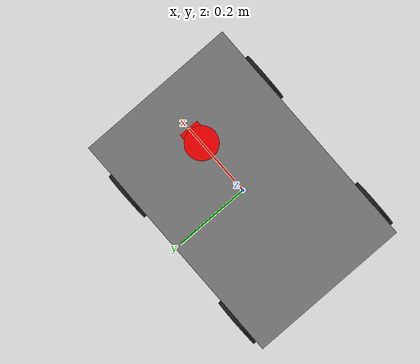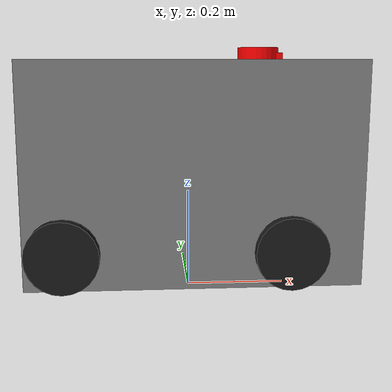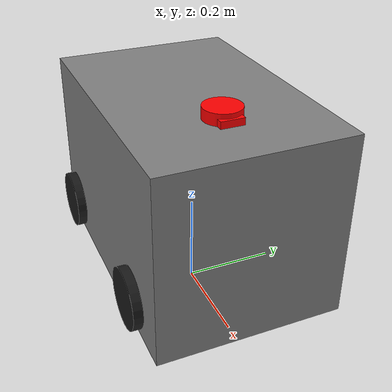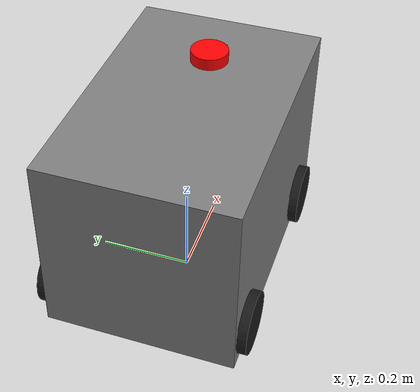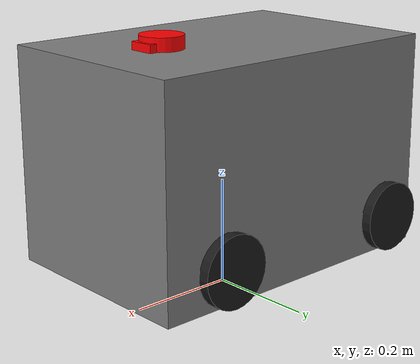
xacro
<?xml version="1.0"?>
<robot name="tianbot_ackermann" xmlns:xacro="http://www.ros.org/wiki/xacro">

  <!-- 实际尺寸参数（根据实测调整） -->
  <xacro:property name="chassis_length" value="0.60"/>
  <xacro:property name="chassis_width" value="0.40"/>
  <xacro:property name="chassis_height" value="0.40"/>

  <xacro:property name="wheel_radius" value="0.065"/>
  <xacro:property name="wheel_width" value="0.04"/>
  <xacro:property name="wheel_mass" value="3.0"/>
  <xacro:property name="steering_mass" value="0.01"/>

  <!-- 轮子位置：前轮距前端13cm，后轮距后端7cm（实测值） -->
  <!-- 轴距 = 0.60 - 0.13 - 0.07 = 0.40m -->
  <xacro:property name="front_wheel_x" value="${chassis_length/2 - 0.13}"/>
  <xacro:property name="rear_wheel_x" value="${-chassis_length/2 + 0.07}"/>
  <xacro:property name="wheel_y" value="${chassis_width/2}"/>

  <xacro:property name="wheelbase" value="${front_wheel_x - rear_wheel_x}"/>
  <xacro:property name="track_width" value="${chassis_width}"/>

  <xacro:property name="M_PI" value="3.1415926535897931"/>

  <!-- Base Footprint -->
  <link name="base_footprint"/>

  <!-- Base Link -->
  <link name="base_link"/>

  <joint name="base_footprint_joint" type="fixed">
    <parent link="base_footprint"/>
    <child link="base_link"/>
    <origin xyz="0 0 ${wheel_radius}" rpy="0 0 0"/>
  </joint>

  <!-- Chassis Link -->
  <link name="chassis_link">
    <visual>
      <origin xyz="0 0 ${chassis_height/2}" rpy="0 0 0"/>
      <geometry>
        <box size="${chassis_length} ${chassis_width} ${chassis_height}"/>
      </geometry>
      <material name="gray">
        <color rgba="0.5 0.5 0.5 1.0"/>
      </material>
    </visual>
    <collision>
      <origin xyz="0 0 ${chassis_height/2}" rpy="0 0 0"/>
      <geometry>
        <box size="${chassis_length} ${chassis_width} ${chassis_height}"/>
      </geometry>
    </collision>
    <inertial>
      <origin xyz="0 0 ${chassis_height/2}" rpy="0 0 0"/>
      <mass value="15.0"/>
      <inertia ixx="0.5" ixy="0.0" ixz="0.0" iyy="0.8" iyz="0.0" izz="0.5"/>
    </inertial>
  </link>

  <joint name="chassis_joint" type="fixed">
    <parent link="base_link"/>
    <child link="chassis_link"/>
    <origin xyz="0 0 0" rpy="0 0 0"/>
  </joint>

  <!-- 前轮转向宏 -->
  <xacro:macro name="front_wheel" params="prefix reflect">
    <joint name="${prefix}_steer_joint" type="revolute">
      <parent link="chassis_link"/>
      <child link="${prefix}_steer_link"/>
      <origin xyz="${front_wheel_x} ${reflect*wheel_y} ${wheel_radius}" rpy="0 0 0"/>
      <axis xyz="0 0 1"/>
      <limit lower="-0.6" upper="0.6" effort="100" velocity="-1.0"/>
    </joint>

    <link name="${prefix}_steer_link">
      <inertial>
        <mass value="${steering_mass}"/>
        <origin xyz="0 0 0" rpy="0 0 0"/>
        <inertia ixx="${steering_mass/12*(3*wheel_radius*wheel_radius + wheel_width*wheel_width)}"
                 ixy="0" ixz="0"
                 iyy="${steering_mass/12*(3*wheel_radius*wheel_radius + wheel_width*wheel_width)}"
                 iyz="0"
                 izz="${steering_mass/2 * wheel_radius*wheel_radius}"/>
      </inertial>
    </link>

    <joint name="${prefix}_wheel_joint" type="continuous">
      <parent link="${prefix}_steer_link"/>
      <child link="${prefix}_wheel"/>
      <origin xyz="0 0 0" rpy="0 0 0"/>
      <axis xyz="0 1 0"/>
      <dynamics damping="0.5" friction="0.8"/>
      <limit lower="-3.14159" upper="3.14159" effort="200" velocity="-1"/>
    </joint>

    <link name="${prefix}_wheel">
      <visual>
        <origin xyz="0 0 0" rpy="${M_PI/2} 0 0"/>
        <geometry>
          <cylinder radius="${wheel_radius}" length="${wheel_width}"/>
        </geometry>
        <material name="black">
          <color rgba="0.1 0.1 0.1 1.0"/>
        </material>
      </visual>
      <collision>
        <origin xyz="0 0 0" rpy="${M_PI/2} 0 0"/>
        <geometry>
          <cylinder radius="${wheel_radius}" length="${wheel_width}"/>
        </geometry>
      </collision>
      <inertial>
        <mass value="${wheel_mass}"/>
        <origin xyz="0 0 0" rpy="0 0 0"/>
        <inertia ixx="${wheel_mass/12*(3*wheel_radius*wheel_radius + wheel_width*wheel_width)}"
                 ixy="0" ixz="0"
                 iyy="${wheel_mass/12*(3*wheel_radius*wheel_radius + wheel_width*wheel_width)}"
                 iyz="0"
                 izz="${wheel_mass/2 * wheel_radius*wheel_radius}"/>
      </inertial>
    </link>
  </xacro:macro>

  <!-- 后轮宏 -->
  <xacro:macro name="rear_wheel" params="prefix reflect">
    <joint name="${prefix}_wheel_joint" type="continuous">
      <parent link="chassis_link"/>
      <child link="${prefix}_wheel"/>
      <origin xyz="${rear_wheel_x} ${reflect*wheel_y} ${wheel_radius}" rpy="0 0 0"/>
      <axis xyz="0 1 0"/>
      <dynamics damping="0.5" friction="0.8"/>
      <limit lower="-3.14159" upper="3.14159" effort="70" velocity="-1"/>
    </joint>

    <link name="${prefix}_wheel">
      <visual>
        <origin xyz="0 0 0" rpy="${M_PI/2} 0 0"/>
        <geometry>
          <cylinder radius="${wheel_radius}" length="${wheel_width}"/>
        </geometry>
        <material name="black">
          <color rgba="0.1 0.1 0.1 1.0"/>
        </material>
      </visual>
      <collision>
        <origin xyz="0 0 0" rpy="${M_PI/2} 0 0"/>
        <geometry>
          <cylinder radius="${wheel_radius}" length="${wheel_width}"/>
        </geometry>
      </collision>
      <inertial>
        <mass value="${wheel_mass}"/>
        <origin xyz="0 0 0" rpy="0 0 0"/>
        <inertia ixx="${wheel_mass/12*(3*wheel_radius*wheel_radius + wheel_width*wheel_width)}"
                 ixy="0" ixz="0"
                 iyy="${wheel_mass/12*(3*wheel_radius*wheel_radius + wheel_width*wheel_width)}"
                 iyz="0"
                 izz="${wheel_mass/2 * wheel_radius*wheel_radius}"/>
      </inertial>
    </link>
  </xacro:macro>

  <!-- 实例化轮子 -->
  <xacro:front_wheel prefix="fr_left" reflect="1"/>
  <xacro:front_wheel prefix="fr_right" reflect="-1"/>
  <xacro:rear_wheel prefix="re_left" reflect="1"/>
  <xacro:rear_wheel prefix="re_right" reflect="-1"/>

  <!-- Gazebo材质与摩擦配置 -->
  <gazebo reference="chassis_link">
    <material>Gazebo/White</material>
    <mu1>0.5</mu1>
    <mu2>0.5</mu2>
  </gazebo>

  <gazebo reference="fr_left_wheel">
    <material>Gazebo/Grey</material>
    <mu1>150.0</mu1>
    <mu2>10.0</mu2>
  </gazebo>

  <gazebo reference="fr_right_wheel">
    <material>Gazebo/Grey</material>
    <mu1>150.0</mu1>
    <mu2>10.0</mu2>
  </gazebo>

  <gazebo reference="re_left_wheel">
    <material>Gazebo/Grey</material>
    <mu1>150.0</mu1>
    <mu2>10.0</mu2>
  </gazebo>

  <gazebo reference="re_right_wheel">
    <material>Gazebo/Grey</material>
    <mu1>150.0</mu1>
    <mu2>10.0</mu2>
  </gazebo>

  <gazebo reference="virtual_steer_link">
    <material>Gazebo/Yellow</material>
  </gazebo>

  <!-- 摄像头：前轮水平位置，宽度一半处 -->
  <joint name="camera_joint" type="fixed">
    <parent link="chassis_link"/>
    <child link="camera_link"/>
    <origin xyz="${front_wheel_x} 0 ${chassis_height}" rpy="0 0 0"/>
  </joint>

  <link name="camera_link">
    <visual>
      <geometry>
        <box size="0.03 0.05 0.03"/>
      </geometry>
      <material name="red">
        <color rgba="1.0 0.0 0.0 1.0"/>
      </material>
    </visual>
    <collision>
      <geometry>
        <box size="0.03 0.05 0.03"/>
      </geometry>
    </collision>
    <inertial>
      <mass value="0.1"/>
      <inertia ixx="0.0001" ixy="0" ixz="0" iyy="0.0001" iyz="0" izz="0.0001"/>
    </inertial>
  </link>

  <!-- 雷达：摄像头往后3cm -->
  <joint name="laser_joint" type="fixed">
    <parent link="chassis_link"/>
    <child link="laser_link"/>
    <origin xyz="${front_wheel_x - 0.03} 0 ${chassis_height}" rpy="0 0 0"/>
  </joint>

  <link name="laser_link">
    <visual>
      <geometry>
        <cylinder radius="0.04" length="0.05"/>
      </geometry>
      <material name="red">
        <color rgba="1.0 0.0 0.0 1.0"/>
      </material>
    </visual>
    <collision>
      <geometry>
        <cylinder radius="0.04" length="0.05"/>
      </geometry>
    </collision>
    <inertial>
      <mass value="0.2"/>
      <inertia ixx="0.0001" ixy="0" ixz="0" iyy="0.0001" iyz="0" izz="0.0001"/>
    </inertial>
  </link>

  <gazebo reference="laser_link">
    <material>Gazebo/Black</material>
    <mu1>1.0</mu1>
    <mu2>1.0</mu2>
  </gazebo>

  <gazebo reference="laser_link">
    <sensor name="laser_sensor" type="ray">
      <always_on>true</always_on>
      <visualize>true</visualize>
      <update_rate>50</update_rate>
      <pose>0 0 0.2 0 0 0</pose>
      <ray>
        <scan>
          <horizontal>
            <samples>360</samples>
            <resolution>1.000000</resolution>
            <min_angle>0.000000</min_angle>
            <max_angle>6.280000</max_angle>
          </horizontal>
        </scan>
        <range>
          <min>0.120000</min>
          <max>10.5</max>
          <resolution>0.015000</resolution>
        </range>
        <noise>
          <type>gaussian</type>
          <mean>0.0</mean>
          <stddev>0.01</stddev>
        </noise>
      </ray>

      <plugin name="laserscan" filename="libgazebo_ros_ray_sensor.so">
        <ros>
          <remapping>~/out:=scan</remapping>
        </ros>
        <output_type>sensor_msgs/LaserScan</output_type>
        <frame_name>laser_link</frame_name>
      </plugin>
    </sensor>
  </gazebo>

  <joint name="imu_joint" type="fixed">
    <parent link="chassis_link"/>
    <child link="imu_link"/>
    <origin xyz="0 0 ${chassis_height/2}" rpy="0 0 0"/>
  </joint>

  <link name="imu_link">
    <visual>
      <geometry>
        <box size="0.02 0.02 0.02"/>
      </geometry>
      <material name="black">
        <color rgba="0.0 0.0 0.0 1.0"/>
      </material>
    </visual>
    <collision>
      <geometry>
        <box size="0.02 0.02 0.02"/>
      </geometry>
    </collision>
    <inertial>
      <mass value="0.05"/>
      <inertia ixx="0.0001" ixy="0" ixz="0" iyy="0.0001" iyz="0" izz="0.0001"/>
    </inertial>
  </link>

  <gazebo reference="imu_link">
    <material>Gazebo/Black</material>
    <mu1>1.0</mu1>
    <mu2>1.0</mu2>
  </gazebo>

  <gazebo reference="imu_link">
    <sensor name="imu_sensor" type="imu">
      <plugin filename="libgazebo_ros_imu_sensor.so" name="imu_plugin">
        <ros>
          <namespace>/</namespace>
          <remapping>~/out:=imu</remapping>
        </ros>
        <initial_orientation_as_reference>false</initial_orientation_as_reference>
      </plugin>
      <always_on>true</always_on>
      <update_rate>100</update_rate>
      <visualize>true</visualize>
      <imu>
        <angular_velocity>
          <x>
            <noise type="gaussian">
              <mean>0.0</mean>
              <stddev>2e-4</stddev>
              <bias_mean>0.0000075</bias_mean>
              <bias_stddev>0.0000008</bias_stddev>
            </noise>
          </x>
          <y>
            <noise type="gaussian">
              <mean>0.0</mean>
              <stddev>2e-4</stddev>
              <bias_mean>0.0000075</bias_mean>
              <bias_stddev>0.0000008</bias_stddev>
            </noise>
          </y>
          <z>
            <noise type="gaussian">
              <mean>0.0</mean>
              <stddev>2e-4</stddev>
              <bias_mean>0.0000075</bias_mean>
              <bias_stddev>0.0000008</bias_stddev>
            </noise>
          </z>
        </angular_velocity>
        <linear_acceleration>
          <x>
            <noise type="gaussian">
              <mean>0.0</mean>
              <stddev>1.7e-2</stddev>
              <bias_mean>0.1</bias_mean>
              <bias_stddev>0.001</bias_stddev>
            </noise>
          </x>
          <y>
            <noise type="gaussian">
              <mean>0.0</mean>
              <stddev>1.7e-2</stddev>
              <bias_mean>0.1</bias_mean>
              <bias_stddev>0.001</bias_stddev>
            </noise>
          </y>
          <z>
            <noise type="gaussian">
              <mean>0.0</mean>
              <stddev>1.7e-2</stddev>
              <bias_mean>0.1</bias_mean>
              <bias_stddev>0.001</bias_stddev>
            </noise>
          </z>
        </linear_acceleration>
      </imu>
    </sensor>
  </gazebo>

  <!-- Virtual Steering wheel -->
  <link name="virtual_steer_link">
    <visual>
      <origin xyz="0.0 0.0 0.0" rpy="0.0 0.0 0.0"/>
      <geometry>
        <box size="0.01 0.15 0.075"/>
      </geometry>
      <material name="yellow">
        <color rgba="1.0 1.0 0.0 1.0"/>
      </material>
    </visual>
    <inertial>
      <origin xyz="0.0 0.0 0.0" rpy="0.0 0.0 0.0"/>
      <mass value="0.001"/>
      <inertia ixx="0.0" ixy="0.0" ixz="0.0" iyy="0.0" iyz="0.0" izz="0.0"/>
    </inertial>
  </link>

  <joint name="virtual_steering_wheel_joint" type="revolute">
    <origin xyz="${-chassis_length/2 + 0.1} 0.0 0.0" rpy="0.0 0.0 0.0"/>
    <parent link="chassis_link"/>
    <child link="virtual_steer_link"/>
    <axis xyz="-1 0 0"/>
    <limit lower="-3" upper="3" effort="200" velocity="20"/>
  </joint>

  <gazebo>
    <plugin name="gazebo_ros_joint_state_publisher"
            filename="libgazebo_ros_joint_state_publisher.so">
      <update_rate>100</update_rate>
      <joint_name>fr_right_steer_joint</joint_name>
      <joint_name>fr_right_wheel_joint</joint_name>
      <joint_name>fr_left_steer_joint</joint_name>
      <joint_name>fr_left_wheel_joint</joint_name>
      <joint_name>re_right_wheel_joint</joint_name>
      <joint_name>re_left_wheel_joint</joint_name>
      <joint_name>virtual_steering_wheel_joint</joint_name>
    </plugin>
  </gazebo>

  <gazebo>
    <plugin name="gazebo_ros_joint_pose_trajectory"
            filename="libgazebo_ros_joint_pose_trajectory.so">
      <update_rate>2</update_rate>
    </plugin>
  </gazebo>

  <!-- Gazebo Ackermann插件 -->
  <gazebo>
    <plugin name="gazebo_ackermann_drive" filename="libgazebo_ros_ackermann_drive.so">
      <ros>
        <remapping>cmd_vel:=cmd_vel</remapping>
        <remapping>odom:=odom</remapping>
        <remapping>distance:=distance</remapping>
      </ros>

      <update_rate>100.0</update_rate>

      <!-- wheels -->
      <front_left_joint>fr_left_wheel_joint</front_left_joint>
      <front_right_joint>fr_right_wheel_joint</front_right_joint>
      <rear_left_joint>re_left_wheel_joint</rear_left_joint>
      <rear_right_joint>re_right_wheel_joint</rear_right_joint>
      <left_steering_joint>fr_left_steer_joint</left_steering_joint>
      <right_steering_joint>fr_right_steer_joint</right_steering_joint>
      <steering_wheel_joint>virtual_steering_wheel_joint</steering_wheel_joint>

      <!-- Max absolute steer angle for tyre in radians-->
      <!-- Any cmd_vel angular z greater than this would be capped -->
      <max_steer>0.383972</max_steer>
      <!-- Max absolute steering angle of steering wheel -->
      <max_steering_angle>1.570796</max_steering_angle>
      <!-- Max absolute linear speed in m/s -->
      <max_speed>5</max_speed>

      <!-- PID tuning -->
      <left_steering_pid_gain>1500 0 1</left_steering_pid_gain>
      <left_steering_i_range>0 0</left_steering_i_range>
      <right_steering_pid_gain>1500 0 1</right_steering_pid_gain>
      <right_steering_i_range>0 0</right_steering_i_range>
      <linear_velocity_pid_gain>1500 0 1</linear_velocity_pid_gain>
      <linear_velocity_i_range>0 0</linear_velocity_i_range>

      <!-- output -->
      <publish_odom>true</publish_odom>
      <publish_odom_tf>true</publish_odom_tf>     <!-- Don't publish this when using robot localization -->
      <publish_wheel_tf>false</publish_wheel_tf>  <!-- Don't publish this. It will override all wheel frames to robot_base_frame parameter below.-->
      <publish_distance>true</publish_distance>

      <odometry_frame>odom</odometry_frame>
      <robot_base_frame>base_footprint</robot_base_frame>
    </plugin>
  </gazebo>

</robot>
